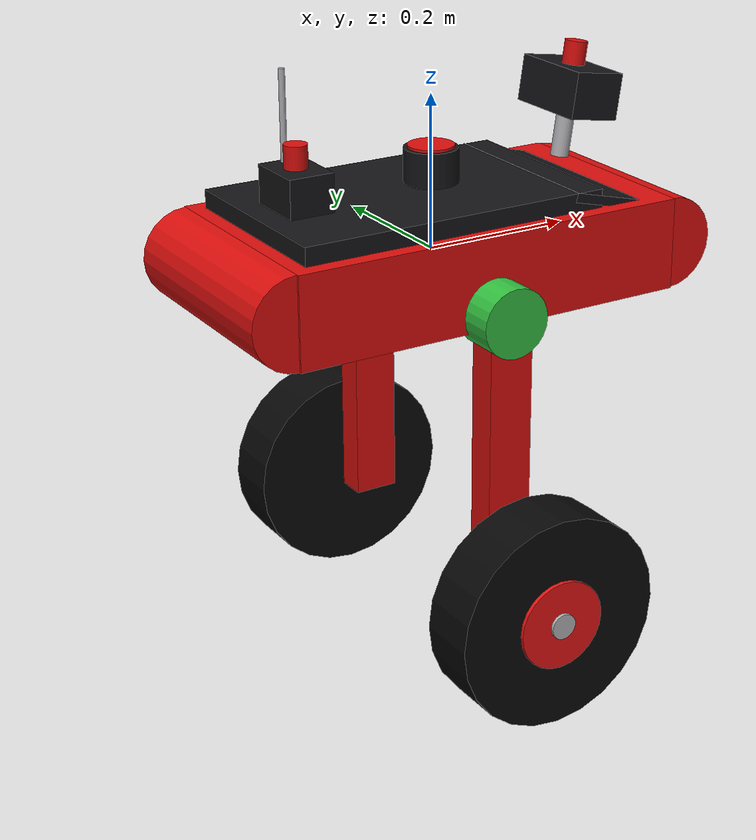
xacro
<?xml version="1.0"?>
<robot name="wheelleg" xmlns:xacro="http://www.ros.org/wiki/xacro">
  <xacro:arg name="ns" default="r1"/>
  <xacro:arg name="sensors" default="true"/>
  <xacro:arg name="stance" default="0.8"/>
  <xacro:property name="ns" value="$(arg ns)"/>

  <xacro:property name="body_l" value="0.54"/>         <!-- straight section; ends are rounded -->
  <xacro:property name="body_w" value="0.30"/>
  <xacro:property name="body_h" value="0.12"/>
  <xacro:property name="hub_y" value="0.165"/>
  <xacro:property name="hub_z" value="-0.04"/>
  <xacro:property name="leg_l" value="0.36"/>
  <xacro:property name="wheel_r" value="0.14"/>
  <xacro:property name="wheel_w" value="0.08"/>
  <xacro:property name="wheel_y" value="0.095"/>        <!-- wheel centre outboard of its leg: track 0.52, width 0.60 -->

  <material name="red"><color rgba="0.86 0.06 0.05 1"/></material>
  <material name="dark"><color rgba="0.08 0.08 0.09 1"/></material>
  <material name="rubber"><color rgba="0.03 0.03 0.03 1"/></material>
  <material name="hub"><color rgba="0.9 0.08 0.08 1"/></material>
  <material name="green"><color rgba="0.2 0.75 0.25 1"/></material>
  <material name="blue"><color rgba="0.2 0.55 0.95 1"/></material>
  <material name="metal"><color rgba="0.7 0.7 0.72 1"/></material>
  <material name="eye"><color rgba="0.15 0.35 0.95 1"/></material>

  <xacro:macro name="box_inertia" params="m x y z *origin">
    <inertial><xacro:insert_block name="origin"/><mass value="${m}"/>
      <inertia ixx="${m*(y*y+z*z)/12}" iyy="${m*(x*x+z*z)/12}" izz="${m*(x*x+y*y)/12}" ixy="0" ixz="0" iyz="0"/>
    </inertial>
  </xacro:macro>

  <!-- ===== body ===== -->
  <link name="base_link">
    <visual><geometry><box size="${body_l} ${body_w} ${body_h}"/></geometry><material name="red"/></visual>
    <visual><origin xyz="${body_l/2} 0 0" rpy="${pi/2} 0 0"/><geometry><cylinder radius="${body_h/2}" length="${body_w - 0.006}"/></geometry><material name="red"/></visual>
    <visual><origin xyz="${-body_l/2} 0 0" rpy="${pi/2} 0 0"/><geometry><cylinder radius="${body_h/2}" length="${body_w - 0.006}"/></geometry><material name="red"/></visual>
    <!-- black top panel, sloping down at the front like the picture -->
    <visual><origin xyz="-0.04 0 ${body_h/2 + 0.012}"/><geometry><box size="${body_l - 0.12} ${body_w - 0.04} 0.024"/></geometry><material name="dark"/></visual>
    <visual><origin xyz="${body_l/2 - 0.08} 0 ${body_h/2 + 0.004}" rpy="0 0.25 0"/><geometry><box size="0.12 ${body_w - 0.04} 0.012"/></geometry><material name="dark"/></visual>
    <!-- differential bar across the underside, linking the two rocker hubs (photo c) -->
    <visual><origin xyz="0 0 ${hub_z}" rpy="${pi/2} 0 0"/><geometry><cylinder radius="0.012" length="${2*hub_y - 0.06}"/></geometry><material name="blue"/></visual>
    <!-- stance actuators: blue rods from each hub back along the body (photo a) -->
    <visual><origin xyz="-0.13 ${hub_y - 0.035} ${hub_z + 0.01}"/><geometry><box size="0.24 0.02 0.02"/></geometry><material name="blue"/></visual>
    <visual><origin xyz="-0.13 ${-hub_y + 0.035} ${hub_z + 0.01}"/><geometry><box size="0.24 0.02 0.02"/></geometry><material name="blue"/></visual>
    <collision><geometry><box size="${body_l + body_h} ${body_w} ${body_h}"/></geometry></collision>
    <xacro:box_inertia m="8.0" x="${body_l + body_h}" y="${body_w}" z="${body_h}"><origin xyz="0 0 -0.01"/></xacro:box_inertia>
  </link>
  <gazebo reference="base_link"><mu1>0.4</mu1><mu2>0.4</mu2></gazebo>

  <!-- ===== rockers, legs, wheels ===== -->
  <xacro:macro name="wheel" params="name side">
    <link name="${name}_wheel">
      <visual><origin rpy="${pi/2} 0 0"/><geometry><cylinder radius="${wheel_r}" length="${wheel_w}"/></geometry><material name="rubber"/></visual>
      <visual><origin xyz="0 ${side*(wheel_w/2 + 0.002)} 0" rpy="${pi/2} 0 0"/><geometry><cylinder radius="${wheel_r*0.42}" length="0.006"/></geometry><material name="hub"/></visual>
      <visual><origin xyz="0 ${side*(wheel_w/2 + 0.006)} 0" rpy="${pi/2} 0 0"/><geometry><cylinder radius="${wheel_r*0.12}" length="0.006"/></geometry><material name="metal"/></visual>
      <collision><origin rpy="${pi/2} 0 0"/><geometry><cylinder radius="${wheel_r}" length="${wheel_w}"/></geometry></collision>
      <!-- iyy includes the geared motor's reflected inertia (far more than the tyre's own);
           ixx/izz raised with it so the inertia stays physically valid (Gazebo rejects it otherwise) -->
      <inertial><mass value="0.8"/>
        <inertia ixx="0.025" iyy="0.04" izz="0.025" ixy="0" ixz="0" iyz="0"/></inertial>
    </link>
    <gazebo reference="${name}_wheel"><mu1>1.5</mu1><mu2>1.5</mu2></gazebo>
  </xacro:macro>

  <!-- leg: dir +1 front (swings forward as its angle grows), -1 rear -->
  <xacro:macro name="leg" params="side_name end dir side">
    <link name="${side_name}${end}_leg">
      <visual><origin xyz="0 0 ${-leg_l/2}"/><geometry><box size="0.06 0.04 ${leg_l}"/></geometry><material name="red"/></visual>
      <collision><origin xyz="0 0 ${-leg_l/2}"/><geometry><box size="0.06 0.04 ${leg_l}"/></geometry></collision>
      <xacro:box_inertia m="0.6" x="0.06" y="0.04" z="${leg_l}"><origin xyz="0 0 ${-leg_l/2}"/></xacro:box_inertia>
    </link>
    <joint name="${side_name}${end}_leg_joint" type="revolute">
      <parent link="${side_name}_rocker"/><child link="${side_name}${end}_leg"/>
      <axis xyz="0 ${-dir} 0"/>
      <!-- 0 (straight down) inside the limits: a joint that starts outside them stays locked -->
      <limit lower="-0.2" upper="1.3" effort="120" velocity="3"/>
    </joint>
    <xacro:wheel name="${side_name}${end}" side="${side}"/>
    <joint name="${side_name}${end}_wheel_joint" type="continuous">
      <parent link="${side_name}${end}_leg"/><child link="${side_name}${end}_wheel"/>
      <origin xyz="0 ${side*wheel_y} ${-leg_l}"/><axis xyz="0 1 0"/>
      <limit effort="60" velocity="14"/>
    </joint>
  </xacro:macro>

  <xacro:macro name="rocker" params="side_name side">
    <!-- the green hub: the left one turns freely; the plugin makes the right one mirror it
         (a differential), which is how both turn on rough ground -->
    <link name="${side_name}_rocker">
      <visual><origin rpy="${pi/2} 0 0"/><geometry><cylinder radius="0.045" length="0.06"/></geometry><material name="green"/></visual>
      <collision><origin rpy="${pi/2} 0 0"/><geometry><cylinder radius="0.04" length="0.05"/></geometry></collision>
      <xacro:box_inertia m="0.5" x="0.09" y="0.06" z="0.09"><origin xyz="0 0 0"/></xacro:box_inertia>
    </link>
    <joint name="${side_name}_rocker_joint" type="revolute">
      <parent link="base_link"/><child link="${side_name}_rocker"/>
      <origin xyz="0 ${side*hub_y} ${hub_z}"/><axis xyz="0 1 0"/>
      <limit lower="-0.15" upper="0.15" effort="80" velocity="5"/>
      <dynamics damping="5.0"/>
    </joint>
    <xacro:leg side_name="${side_name}" end="f" dir="1" side="${side}"/>
    <xacro:leg side_name="${side_name}" end="r" dir="-1" side="${side}"/>
  </xacro:macro>
  <xacro:rocker side_name="l" side="1"/>
  <xacro:rocker side_name="r" side="-1"/>

  <!-- ===== sensors ===== -->
  <link name="lidar_link">
    <visual><geometry><cylinder radius="0.035" length="0.045"/></geometry><material name="dark"/></visual>
    <visual><origin xyz="0 0 0.024"/><geometry><cylinder radius="0.03" length="0.004"/></geometry><material name="red"/></visual>
    <collision><geometry><cylinder radius="0.035" length="0.045"/></geometry></collision>
    <xacro:box_inertia m="0.2" x="0.07" y="0.07" z="0.045"><origin xyz="0 0 0"/></xacro:box_inertia>
  </link>
  <joint name="lidar_joint" type="fixed">
    <parent link="base_link"/><child link="lidar_link"/>
    <origin xyz="0.0 0 ${body_h/2 + 0.05}"/>
  </joint>

  <!-- camera head with its lights at the front, like the black boxes with red lamps on top -->
  <link name="camera_link">
    <visual><geometry><box size="0.07 0.12 0.06"/></geometry><material name="dark"/></visual>
    <visual><origin xyz="0.036 0.03 0" rpy="0 ${pi/2} 0"/><geometry><cylinder radius="0.016" length="0.004"/></geometry><material name="eye"/></visual>
    <visual><origin xyz="0.036 -0.03 0" rpy="0 ${pi/2} 0"/><geometry><cylinder radius="0.016" length="0.004"/></geometry><material name="metal"/></visual>
    <visual><origin xyz="0 0 0.045"/><geometry><cylinder radius="0.015" length="0.03"/></geometry><material name="red"/></visual>
    <visual><origin xyz="0 0 -0.06"/><geometry><cylinder radius="0.012" length="0.06"/></geometry><material name="metal"/></visual>
    <collision><geometry><box size="0.07 0.12 0.06"/></geometry></collision>
    <xacro:box_inertia m="0.3" x="0.07" y="0.12" z="0.06"><origin xyz="0 0 0"/></xacro:box_inertia>
  </link>
  <joint name="camera_joint" type="fixed">
    <parent link="base_link"/><child link="camera_link"/>
    <origin xyz="${body_l/2 - 0.06} 0 ${body_h/2 + 0.12}" rpy="0 0.15 0"/>
  </joint>
  <link name="camera_optical_frame"/>
  <joint name="camera_optical_joint" type="fixed">
    <parent link="camera_link"/><child link="camera_optical_frame"/>
    <origin rpy="${-pi/2} 0 ${-pi/2}"/>
  </joint>

  <!-- rear beacon and antenna -->
  <link name="beacon_link">
    <visual><geometry><box size="0.06 0.08 0.05"/></geometry><material name="dark"/></visual>
    <visual><origin xyz="0 0 0.04"/><geometry><cylinder radius="0.015" length="0.03"/></geometry><material name="red"/></visual>
    <visual><origin xyz="0 0.03 0.08"/><geometry><cylinder radius="0.004" length="0.12"/></geometry><material name="metal"/></visual>
  </link>
  <joint name="beacon_joint" type="fixed">
    <parent link="base_link"/><child link="beacon_link"/>
    <origin xyz="${-body_l/2 + 0.08} 0 ${body_h/2 + 0.05}"/>
  </joint>

  <link name="imu_link"/>
  <joint name="imu_joint" type="fixed">
    <parent link="base_link"/><child link="imu_link"/>
  </joint>

  <xacro:include filename="$(find rescue_description)/urdf/sensors.xacro"/>
  <xacro:if value="$(arg sensors)">
    <xacro:rescue_sensors ns="${ns}"/>
  </xacro:if>

  <!-- ===== drive, suspension, levelling ===== -->
  <gazebo>
    <plugin filename="RescueWheelLegDrive" name="rescue_wheelleg::WheelLegDrive">
      <cmd_vel_topic>/${ns}/cmd_vel</cmd_vel_topic>
      <stance_topic>/${ns}/stance</stance_topic>
      <body_link>base_link</body_link>
      <leg_length>${leg_l}</leg_length>
      <wheel_radius>${wheel_r}</wheel_radius>
      <track>${2*(hub_y + wheel_y) * 1.8}</track>   <!-- x1.8: tyres scrub turning on the spot (measured) -->
      <stance>$(arg stance)</stance>
      <stance_min>0.25</stance_min>
      <stance_max>1.15</stance_max>
      <leg_gain>6.0</leg_gain>
      <leg_max_rate>1.2</leg_max_rate>
      <diff_gain>8.0</diff_gain>
      <climb_open>0.2</climb_open>
      <climb_close>0.3</climb_close>
      <climb_rate>0.5</climb_rate>
      <push_time>1.5</push_time>
      <stall_time>0.4</stall_time>
      <climb_attempts>0</climb_attempts>   <!-- leg pushes off: tested, they tip the robot at the turnable stance -->
      <tip_pitch>0.35</tip_pitch>
      <roll_guard>0.2</roll_guard>
      <level_gain>3.0</level_gain>
      <level_limit>0.4</level_limit>
      <max_speed>0.9</max_speed>
      <max_turn>2.0</max_turn>
      <accel>1.2</accel>
      <turn_accel>4.0</turn_accel>
      <cmd_timeout>0.5</cmd_timeout>
    </plugin>
  </gazebo>
  <xacro:ground_truth_odom ns="${ns}"/>
</robot>
